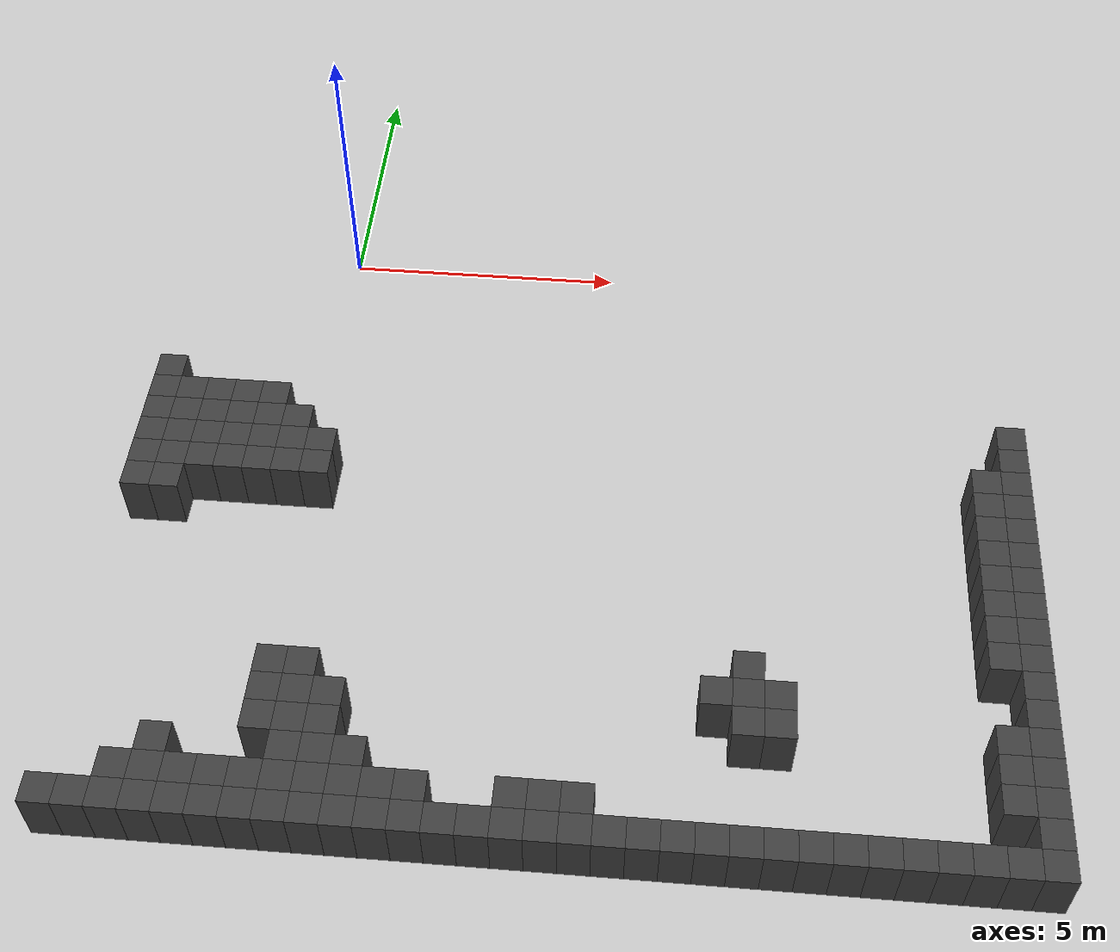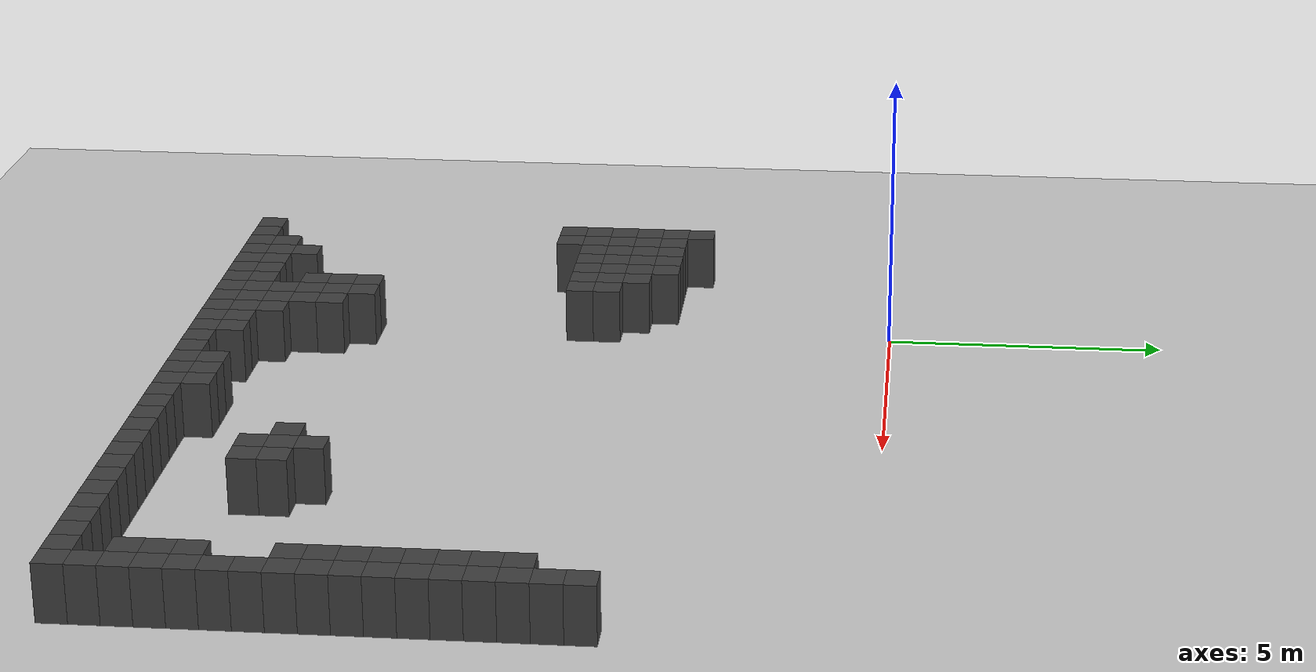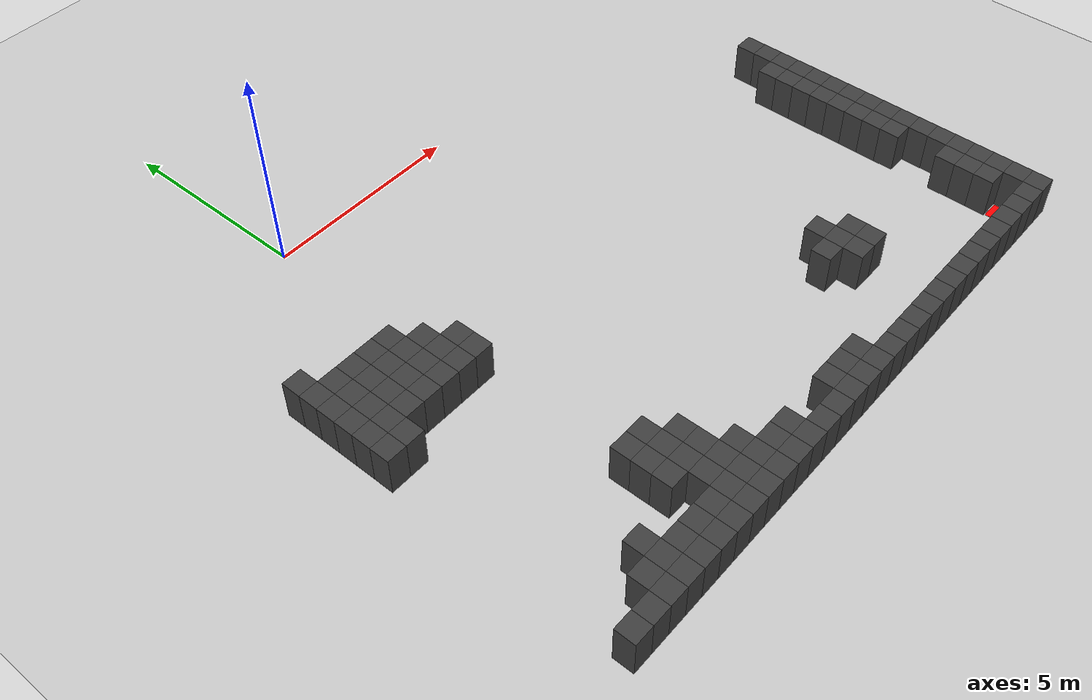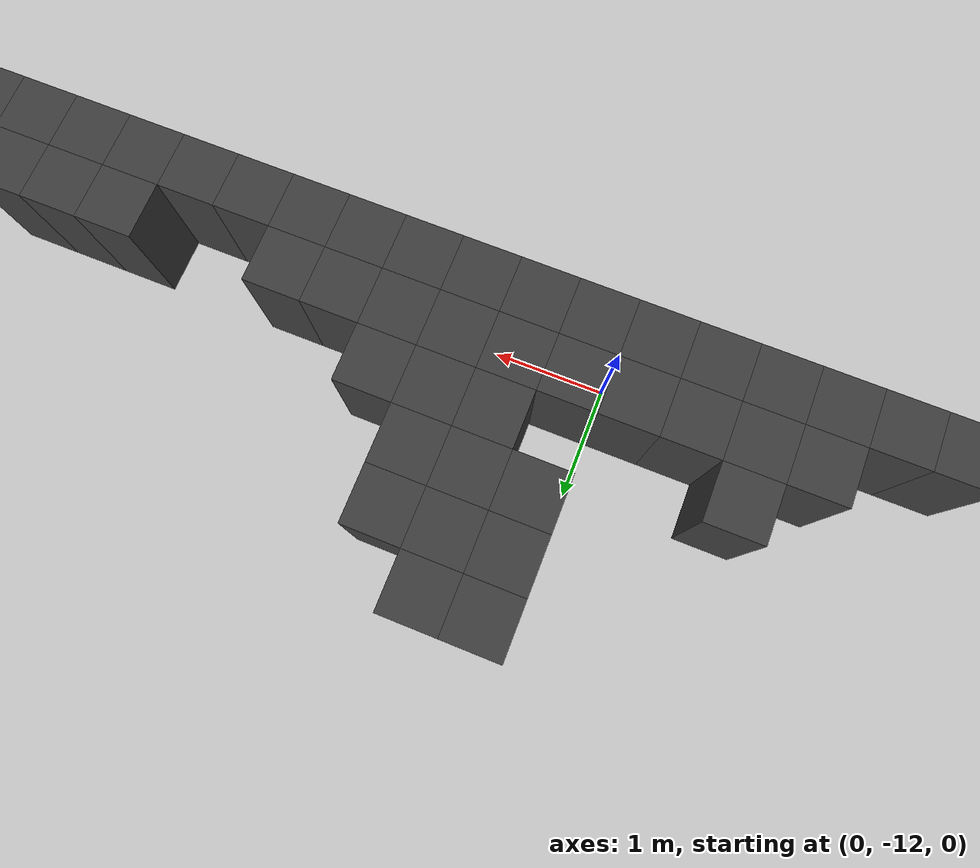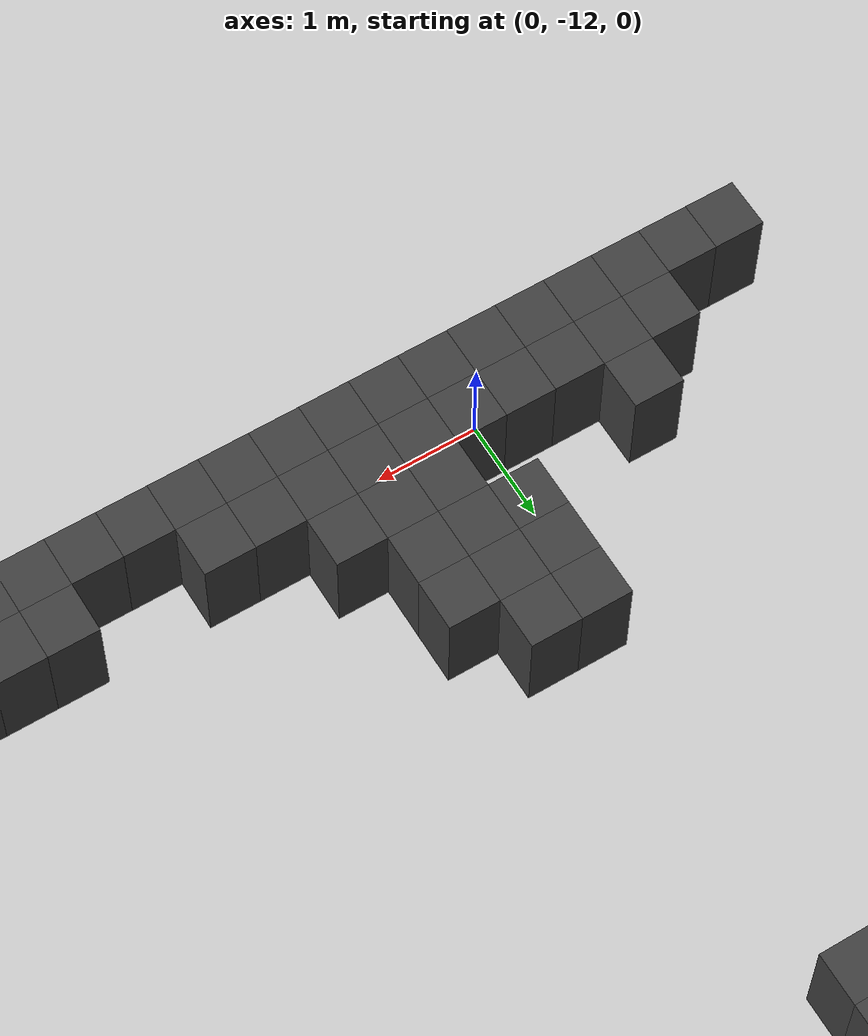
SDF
<sdf version="1.7">
 <world name="map_6610">
  <model name="ground_plane">
   <static>true</static>
   <link name="link">
    <collision name="collision">
     <geometry><plane><normal>0 0 1</normal><size>200 200</size></plane></geometry>
    </collision>
    <visual name="visual">
     <geometry><plane><normal>0 0 1</normal><size>200 200</size></plane></geometry>
     <material><ambient>0.8 0.8 0.8 1</ambient><diffuse>0.8 0.8 0.8 1</diffuse></material>
    </visual>
   </link>
  </model>
  <model name="maze_environment">
   <static>true</static>
   <link name="wall_361">
    <pose>-2.750 -3.750 0.500 0 0 0</pose>
    <collision name="col"><geometry><box><size>0.5 0.5 1.0</size></box></geometry></collision>
    <visual name="vis">
     <geometry><box><size>0.5 0.5 1.0</size></box></geometry>
     <material><ambient>0.15 0.15 0.15 1</ambient><diffuse>0.25 0.25 0.25 1</diffuse></material>
    </visual>
   </link>
   <link name="wall_375">
    <pose>-2.750 -4.250 0.500 0 0 0</pose>
    <collision name="col"><geometry><box><size>0.5 0.5 1.0</size></box></geometry></collision>
    <visual name="vis">
     <geometry><box><size>0.5 0.5 1.0</size></box></geometry>
     <material><ambient>0.15 0.15 0.15 1</ambient><diffuse>0.25 0.25 0.25 1</diffuse></material>
    </visual>
   </link>
   <link name="wall_376">
    <pose>-2.250 -4.250 0.500 0 0 0</pose>
    <collision name="col"><geometry><box><size>0.5 0.5 1.0</size></box></geometry></collision>
    <visual name="vis">
     <geometry><box><size>0.5 0.5 1.0</size></box></geometry>
     <material><ambient>0.15 0.15 0.15 1</ambient><diffuse>0.25 0.25 0.25 1</diffuse></material>
    </visual>
   </link>
   <link name="wall_377">
    <pose>-1.750 -4.250 0.500 0 0 0</pose>
    <collision name="col"><geometry><box><size>0.5 0.5 1.0</size></box></geometry></collision>
    <visual name="vis">
     <geometry><box><size>0.5 0.5 1.0</size></box></geometry>
     <material><ambient>0.15 0.15 0.15 1</ambient><diffuse>0.25 0.25 0.25 1</diffuse></material>
    </visual>
   </link>
   <link name="wall_378">
    <pose>-1.250 -4.250 0.500 0 0 0</pose>
    <collision name="col"><geometry><box><size>0.5 0.5 1.0</size></box></geometry></collision>
    <visual name="vis">
     <geometry><box><size>0.5 0.5 1.0</size></box></geometry>
     <material><ambient>0.15 0.15 0.15 1</ambient><diffuse>0.25 0.25 0.25 1</diffuse></material>
    </visual>
   </link>
   <link name="wall_379">
    <pose>-0.750 -4.250 0.500 0 0 0</pose>
    <collision name="col"><geometry><box><size>0.5 0.5 1.0</size></box></geometry></collision>
    <visual name="vis">
     <geometry><box><size>0.5 0.5 1.0</size></box></geometry>
     <material><ambient>0.15 0.15 0.15 1</ambient><diffuse>0.25 0.25 0.25 1</diffuse></material>
    </visual>
   </link>
   <link name="wall_380">
    <pose>12.250 -4.250 0.500 0 0 0</pose>
    <collision name="col"><geometry><box><size>0.5 0.5 1.0</size></box></geometry></collision>
    <visual name="vis">
     <geometry><box><size>0.5 0.5 1.0</size></box></geometry>
     <material><ambient>0.15 0.15 0.15 1</ambient><diffuse>0.25 0.25 0.25 1</diffuse></material>
    </visual>
   </link>
   <link name="wall_390">
    <pose>-2.750 -4.750 0.500 0 0 0</pose>
    <collision name="col"><geometry><box><size>0.5 0.5 1.0</size></box></geometry></collision>
    <visual name="vis">
     <geometry><box><size>0.5 0.5 1.0</size></box></geometry>
     <material><ambient>0.15 0.15 0.15 1</ambient><diffuse>0.25 0.25 0.25 1</diffuse></material>
    </visual>
   </link>
   <link name="wall_391">
    <pose>-2.250 -4.750 0.500 0 0 0</pose>
    <collision name="col"><geometry><box><size>0.5 0.5 1.0</size></box></geometry></collision>
    <visual name="vis">
     <geometry><box><size>0.5 0.5 1.0</size></box></geometry>
     <material><ambient>0.15 0.15 0.15 1</ambient><diffuse>0.25 0.25 0.25 1</diffuse></material>
    </visual>
   </link>
   <link name="wall_392">
    <pose>-1.750 -4.750 0.500 0 0 0</pose>
    <collision name="col"><geometry><box><size>0.5 0.5 1.0</size></box></geometry></collision>
    <visual name="vis">
     <geometry><box><size>0.5 0.5 1.0</size></box></geometry>
     <material><ambient>0.15 0.15 0.15 1</ambient><diffuse>0.25 0.25 0.25 1</diffuse></material>
    </visual>
   </link>
   <link name="wall_393">
    <pose>-1.250 -4.750 0.500 0 0 0</pose>
    <collision name="col"><geometry><box><size>0.5 0.5 1.0</size></box></geometry></collision>
    <visual name="vis">
     <geometry><box><size>0.5 0.5 1.0</size></box></geometry>
     <material><ambient>0.15 0.15 0.15 1</ambient><diffuse>0.25 0.25 0.25 1</diffuse></material>
    </visual>
   </link>
   <link name="wall_394">
    <pose>-0.750 -4.750 0.500 0 0 0</pose>
    <collision name="col"><geometry><box><size>0.5 0.5 1.0</size></box></geometry></collision>
    <visual name="vis">
     <geometry><box><size>0.5 0.5 1.0</size></box></geometry>
     <material><ambient>0.15 0.15 0.15 1</ambient><diffuse>0.25 0.25 0.25 1</diffuse></material>
    </visual>
   </link>
   <link name="wall_395">
    <pose>-0.250 -4.750 0.500 0 0 0</pose>
    <collision name="col"><geometry><box><size>0.5 0.5 1.0</size></box></geometry></collision>
    <visual name="vis">
     <geometry><box><size>0.5 0.5 1.0</size></box></geometry>
     <material><ambient>0.15 0.15 0.15 1</ambient><diffuse>0.25 0.25 0.25 1</diffuse></material>
    </visual>
   </link>
   <link name="wall_396">
    <pose>12.250 -4.750 0.500 0 0 0</pose>
    <collision name="col"><geometry><box><size>0.5 0.5 1.0</size></box></geometry></collision>
    <visual name="vis">
     <geometry><box><size>0.5 0.5 1.0</size></box></geometry>
     <material><ambient>0.15 0.15 0.15 1</ambient><diffuse>0.25 0.25 0.25 1</diffuse></material>
    </visual>
   </link>
   <link name="wall_409">
    <pose>-2.750 -5.250 0.500 0 0 0</pose>
    <collision name="col"><geometry><box><size>0.5 0.5 1.0</size></box></geometry></collision>
    <visual name="vis">
     <geometry><box><size>0.5 0.5 1.0</size></box></geometry>
     <material><ambient>0.15 0.15 0.15 1</ambient><diffuse>0.25 0.25 0.25 1</diffuse></material>
    </visual>
   </link>
   <link name="wall_410">
    <pose>-2.250 -5.250 0.500 0 0 0</pose>
    <collision name="col"><geometry><box><size>0.5 0.5 1.0</size></box></geometry></collision>
    <visual name="vis">
     <geometry><box><size>0.5 0.5 1.0</size></box></geometry>
     <material><ambient>0.15 0.15 0.15 1</ambient><diffuse>0.25 0.25 0.25 1</diffuse></material>
    </visual>
   </link>
   <link name="wall_411">
    <pose>-1.750 -5.250 0.500 0 0 0</pose>
    <collision name="col"><geometry><box><size>0.5 0.5 1.0</size></box></geometry></collision>
    <visual name="vis">
     <geometry><box><size>0.5 0.5 1.0</size></box></geometry>
     <material><ambient>0.15 0.15 0.15 1</ambient><diffuse>0.25 0.25 0.25 1</diffuse></material>
    </visual>
   </link>
   <link name="wall_412">
    <pose>-1.250 -5.250 0.500 0 0 0</pose>
    <collision name="col"><geometry><box><size>0.5 0.5 1.0</size></box></geometry></collision>
    <visual name="vis">
     <geometry><box><size>0.5 0.5 1.0</size></box></geometry>
     <material><ambient>0.15 0.15 0.15 1</ambient><diffuse>0.25 0.25 0.25 1</diffuse></material>
    </visual>
   </link>
   <link name="wall_413">
    <pose>-0.750 -5.250 0.500 0 0 0</pose>
    <collision name="col"><geometry><box><size>0.5 0.5 1.0</size></box></geometry></collision>
    <visual name="vis">
     <geometry><box><size>0.5 0.5 1.0</size></box></geometry>
     <material><ambient>0.15 0.15 0.15 1</ambient><diffuse>0.25 0.25 0.25 1</diffuse></material>
    </visual>
   </link>
   <link name="wall_414">
    <pose>-0.250 -5.250 0.500 0 0 0</pose>
    <collision name="col"><geometry><box><size>0.5 0.5 1.0</size></box></geometry></collision>
    <visual name="vis">
     <geometry><box><size>0.5 0.5 1.0</size></box></geometry>
     <material><ambient>0.15 0.15 0.15 1</ambient><diffuse>0.25 0.25 0.25 1</diffuse></material>
    </visual>
   </link>
   <link name="wall_415">
    <pose>0.250 -5.250 0.500 0 0 0</pose>
    <collision name="col"><geometry><box><size>0.5 0.5 1.0</size></box></geometry></collision>
    <visual name="vis">
     <geometry><box><size>0.5 0.5 1.0</size></box></geometry>
     <material><ambient>0.15 0.15 0.15 1</ambient><diffuse>0.25 0.25 0.25 1</diffuse></material>
    </visual>
   </link>
   <link name="wall_416">
    <pose>11.750 -5.250 0.500 0 0 0</pose>
    <collision name="col"><geometry><box><size>0.5 0.5 1.0</size></box></geometry></collision>
    <visual name="vis">
     <geometry><box><size>0.5 0.5 1.0</size></box></geometry>
     <material><ambient>0.15 0.15 0.15 1</ambient><diffuse>0.25 0.25 0.25 1</diffuse></material>
    </visual>
   </link>
   <link name="wall_417">
    <pose>12.250 -5.250 0.500 0 0 0</pose>
    <collision name="col"><geometry><box><size>0.5 0.5 1.0</size></box></geometry></collision>
    <visual name="vis">
     <geometry><box><size>0.5 0.5 1.0</size></box></geometry>
     <material><ambient>0.15 0.15 0.15 1</ambient><diffuse>0.25 0.25 0.25 1</diffuse></material>
    </visual>
   </link>
   <link name="wall_429">
    <pose>-2.750 -5.750 0.500 0 0 0</pose>
    <collision name="col"><geometry><box><size>0.5 0.5 1.0</size></box></geometry></collision>
    <visual name="vis">
     <geometry><box><size>0.5 0.5 1.0</size></box></geometry>
     <material><ambient>0.15 0.15 0.15 1</ambient><diffuse>0.25 0.25 0.25 1</diffuse></material>
    </visual>
   </link>
   <link name="wall_430">
    <pose>-2.250 -5.750 0.500 0 0 0</pose>
    <collision name="col"><geometry><box><size>0.5 0.5 1.0</size></box></geometry></collision>
    <visual name="vis">
     <geometry><box><size>0.5 0.5 1.0</size></box></geometry>
     <material><ambient>0.15 0.15 0.15 1</ambient><diffuse>0.25 0.25 0.25 1</diffuse></material>
    </visual>
   </link>
   <link name="wall_431">
    <pose>-1.750 -5.750 0.500 0 0 0</pose>
    <collision name="col"><geometry><box><size>0.5 0.5 1.0</size></box></geometry></collision>
    <visual name="vis">
     <geometry><box><size>0.5 0.5 1.0</size></box></geometry>
     <material><ambient>0.15 0.15 0.15 1</ambient><diffuse>0.25 0.25 0.25 1</diffuse></material>
    </visual>
   </link>
   <link name="wall_432">
    <pose>-1.250 -5.750 0.500 0 0 0</pose>
    <collision name="col"><geometry><box><size>0.5 0.5 1.0</size></box></geometry></collision>
    <visual name="vis">
     <geometry><box><size>0.5 0.5 1.0</size></box></geometry>
     <material><ambient>0.15 0.15 0.15 1</ambient><diffuse>0.25 0.25 0.25 1</diffuse></material>
    </visual>
   </link>
   <link name="wall_433">
    <pose>-0.750 -5.750 0.500 0 0 0</pose>
    <collision name="col"><geometry><box><size>0.5 0.5 1.0</size></box></geometry></collision>
    <visual name="vis">
     <geometry><box><size>0.5 0.5 1.0</size></box></geometry>
     <material><ambient>0.15 0.15 0.15 1</ambient><diffuse>0.25 0.25 0.25 1</diffuse></material>
    </visual>
   </link>
   <link name="wall_434">
    <pose>-0.250 -5.750 0.500 0 0 0</pose>
    <collision name="col"><geometry><box><size>0.5 0.5 1.0</size></box></geometry></collision>
    <visual name="vis">
     <geometry><box><size>0.5 0.5 1.0</size></box></geometry>
     <material><ambient>0.15 0.15 0.15 1</ambient><diffuse>0.25 0.25 0.25 1</diffuse></material>
    </visual>
   </link>
   <link name="wall_435">
    <pose>0.250 -5.750 0.500 0 0 0</pose>
    <collision name="col"><geometry><box><size>0.5 0.5 1.0</size></box></geometry></collision>
    <visual name="vis">
     <geometry><box><size>0.5 0.5 1.0</size></box></geometry>
     <material><ambient>0.15 0.15 0.15 1</ambient><diffuse>0.25 0.25 0.25 1</diffuse></material>
    </visual>
   </link>
   <link name="wall_436">
    <pose>11.750 -5.750 0.500 0 0 0</pose>
    <collision name="col"><geometry><box><size>0.5 0.5 1.0</size></box></geometry></collision>
    <visual name="vis">
     <geometry><box><size>0.5 0.5 1.0</size></box></geometry>
     <material><ambient>0.15 0.15 0.15 1</ambient><diffuse>0.25 0.25 0.25 1</diffuse></material>
    </visual>
   </link>
   <link name="wall_437">
    <pose>12.250 -5.750 0.500 0 0 0</pose>
    <collision name="col"><geometry><box><size>0.5 0.5 1.0</size></box></geometry></collision>
    <visual name="vis">
     <geometry><box><size>0.5 0.5 1.0</size></box></geometry>
     <material><ambient>0.15 0.15 0.15 1</ambient><diffuse>0.25 0.25 0.25 1</diffuse></material>
    </visual>
   </link>
   <link name="wall_448">
    <pose>-2.750 -6.250 0.500 0 0 0</pose>
    <collision name="col"><geometry><box><size>0.5 0.5 1.0</size></box></geometry></collision>
    <visual name="vis">
     <geometry><box><size>0.5 0.5 1.0</size></box></geometry>
     <material><ambient>0.15 0.15 0.15 1</ambient><diffuse>0.25 0.25 0.25 1</diffuse></material>
    </visual>
   </link>
   <link name="wall_449">
    <pose>-2.250 -6.250 0.500 0 0 0</pose>
    <collision name="col"><geometry><box><size>0.5 0.5 1.0</size></box></geometry></collision>
    <visual name="vis">
     <geometry><box><size>0.5 0.5 1.0</size></box></geometry>
     <material><ambient>0.15 0.15 0.15 1</ambient><diffuse>0.25 0.25 0.25 1</diffuse></material>
    </visual>
   </link>
   <link name="wall_450">
    <pose>11.750 -6.250 0.500 0 0 0</pose>
    <collision name="col"><geometry><box><size>0.5 0.5 1.0</size></box></geometry></collision>
    <visual name="vis">
     <geometry><box><size>0.5 0.5 1.0</size></box></geometry>
     <material><ambient>0.15 0.15 0.15 1</ambient><diffuse>0.25 0.25 0.25 1</diffuse></material>
    </visual>
   </link>
   <link name="wall_451">
    <pose>12.250 -6.250 0.500 0 0 0</pose>
    <collision name="col"><geometry><box><size>0.5 0.5 1.0</size></box></geometry></collision>
    <visual name="vis">
     <geometry><box><size>0.5 0.5 1.0</size></box></geometry>
     <material><ambient>0.15 0.15 0.15 1</ambient><diffuse>0.25 0.25 0.25 1</diffuse></material>
    </visual>
   </link>
   <link name="wall_454">
    <pose>11.750 -6.750 0.500 0 0 0</pose>
    <collision name="col"><geometry><box><size>0.5 0.5 1.0</size></box></geometry></collision>
    <visual name="vis">
     <geometry><box><size>0.5 0.5 1.0</size></box></geometry>
     <material><ambient>0.15 0.15 0.15 1</ambient><diffuse>0.25 0.25 0.25 1</diffuse></material>
    </visual>
   </link>
   <link name="wall_455">
    <pose>12.250 -6.750 0.500 0 0 0</pose>
    <collision name="col"><geometry><box><size>0.5 0.5 1.0</size></box></geometry></collision>
    <visual name="vis">
     <geometry><box><size>0.5 0.5 1.0</size></box></geometry>
     <material><ambient>0.15 0.15 0.15 1</ambient><diffuse>0.25 0.25 0.25 1</diffuse></material>
    </visual>
   </link>
   <link name="wall_457">
    <pose>11.750 -7.250 0.500 0 0 0</pose>
    <collision name="col"><geometry><box><size>0.5 0.5 1.0</size></box></geometry></collision>
    <visual name="vis">
     <geometry><box><size>0.5 0.5 1.0</size></box></geometry>
     <material><ambient>0.15 0.15 0.15 1</ambient><diffuse>0.25 0.25 0.25 1</diffuse></material>
    </visual>
   </link>
   <link name="wall_458">
    <pose>12.250 -7.250 0.500 0 0 0</pose>
    <collision name="col"><geometry><box><size>0.5 0.5 1.0</size></box></geometry></collision>
    <visual name="vis">
     <geometry><box><size>0.5 0.5 1.0</size></box></geometry>
     <material><ambient>0.15 0.15 0.15 1</ambient><diffuse>0.25 0.25 0.25 1</diffuse></material>
    </visual>
   </link>
   <link name="wall_460">
    <pose>11.750 -7.750 0.500 0 0 0</pose>
    <collision name="col"><geometry><box><size>0.5 0.5 1.0</size></box></geometry></collision>
    <visual name="vis">
     <geometry><box><size>0.5 0.5 1.0</size></box></geometry>
     <material><ambient>0.15 0.15 0.15 1</ambient><diffuse>0.25 0.25 0.25 1</diffuse></material>
    </visual>
   </link>
   <link name="wall_461">
    <pose>12.250 -7.750 0.500 0 0 0</pose>
    <collision name="col"><geometry><box><size>0.5 0.5 1.0</size></box></geometry></collision>
    <visual name="vis">
     <geometry><box><size>0.5 0.5 1.0</size></box></geometry>
     <material><ambient>0.15 0.15 0.15 1</ambient><diffuse>0.25 0.25 0.25 1</diffuse></material>
    </visual>
   </link>
   <link name="wall_463">
    <pose>11.750 -8.250 0.500 0 0 0</pose>
    <collision name="col"><geometry><box><size>0.5 0.5 1.0</size></box></geometry></collision>
    <visual name="vis">
     <geometry><box><size>0.5 0.5 1.0</size></box></geometry>
     <material><ambient>0.15 0.15 0.15 1</ambient><diffuse>0.25 0.25 0.25 1</diffuse></material>
    </visual>
   </link>
   <link name="wall_464">
    <pose>12.250 -8.250 0.500 0 0 0</pose>
    <collision name="col"><geometry><box><size>0.5 0.5 1.0</size></box></geometry></collision>
    <visual name="vis">
     <geometry><box><size>0.5 0.5 1.0</size></box></geometry>
     <material><ambient>0.15 0.15 0.15 1</ambient><diffuse>0.25 0.25 0.25 1</diffuse></material>
    </visual>
   </link>
   <link name="wall_466">
    <pose>11.750 -8.750 0.500 0 0 0</pose>
    <collision name="col"><geometry><box><size>0.5 0.5 1.0</size></box></geometry></collision>
    <visual name="vis">
     <geometry><box><size>0.5 0.5 1.0</size></box></geometry>
     <material><ambient>0.15 0.15 0.15 1</ambient><diffuse>0.25 0.25 0.25 1</diffuse></material>
    </visual>
   </link>
   <link name="wall_467">
    <pose>12.250 -8.750 0.500 0 0 0</pose>
    <collision name="col"><geometry><box><size>0.5 0.5 1.0</size></box></geometry></collision>
    <visual name="vis">
     <geometry><box><size>0.5 0.5 1.0</size></box></geometry>
     <material><ambient>0.15 0.15 0.15 1</ambient><diffuse>0.25 0.25 0.25 1</diffuse></material>
    </visual>
   </link>
   <link name="wall_469">
    <pose>7.750 -9.250 0.500 0 0 0</pose>
    <collision name="col"><geometry><box><size>0.5 0.5 1.0</size></box></geometry></collision>
    <visual name="vis">
     <geometry><box><size>0.5 0.5 1.0</size></box></geometry>
     <material><ambient>0.15 0.15 0.15 1</ambient><diffuse>0.25 0.25 0.25 1</diffuse></material>
    </visual>
   </link>
   <link name="wall_470">
    <pose>12.250 -9.250 0.500 0 0 0</pose>
    <collision name="col"><geometry><box><size>0.5 0.5 1.0</size></box></geometry></collision>
    <visual name="vis">
     <geometry><box><size>0.5 0.5 1.0</size></box></geometry>
     <material><ambient>0.15 0.15 0.15 1</ambient><diffuse>0.25 0.25 0.25 1</diffuse></material>
    </visual>
   </link>
   <link name="wall_472">
    <pose>0.250 -9.750 0.500 0 0 0</pose>
    <collision name="col"><geometry><box><size>0.5 0.5 1.0</size></box></geometry></collision>
    <visual name="vis">
     <geometry><box><size>0.5 0.5 1.0</size></box></geometry>
     <material><ambient>0.15 0.15 0.15 1</ambient><diffuse>0.25 0.25 0.25 1</diffuse></material>
    </visual>
   </link>
   <link name="wall_473">
    <pose>0.750 -9.750 0.500 0 0 0</pose>
    <collision name="col"><geometry><box><size>0.5 0.5 1.0</size></box></geometry></collision>
    <visual name="vis">
     <geometry><box><size>0.5 0.5 1.0</size></box></geometry>
     <material><ambient>0.15 0.15 0.15 1</ambient><diffuse>0.25 0.25 0.25 1</diffuse></material>
    </visual>
   </link>
   <link name="wall_474">
    <pose>7.250 -9.750 0.500 0 0 0</pose>
    <collision name="col"><geometry><box><size>0.5 0.5 1.0</size></box></geometry></collision>
    <visual name="vis">
     <geometry><box><size>0.5 0.5 1.0</size></box></geometry>
     <material><ambient>0.15 0.15 0.15 1</ambient><diffuse>0.25 0.25 0.25 1</diffuse></material>
    </visual>
   </link>
   <link name="wall_475">
    <pose>7.750 -9.750 0.500 0 0 0</pose>
    <collision name="col"><geometry><box><size>0.5 0.5 1.0</size></box></geometry></collision>
    <visual name="vis">
     <geometry><box><size>0.5 0.5 1.0</size></box></geometry>
     <material><ambient>0.15 0.15 0.15 1</ambient><diffuse>0.25 0.25 0.25 1</diffuse></material>
    </visual>
   </link>
   <link name="wall_476">
    <pose>8.250 -9.750 0.500 0 0 0</pose>
    <collision name="col"><geometry><box><size>0.5 0.5 1.0</size></box></geometry></collision>
    <visual name="vis">
     <geometry><box><size>0.5 0.5 1.0</size></box></geometry>
     <material><ambient>0.15 0.15 0.15 1</ambient><diffuse>0.25 0.25 0.25 1</diffuse></material>
    </visual>
   </link>
   <link name="wall_477">
    <pose>12.250 -9.750 0.500 0 0 0</pose>
    <collision name="col"><geometry><box><size>0.5 0.5 1.0</size></box></geometry></collision>
    <visual name="vis">
     <geometry><box><size>0.5 0.5 1.0</size></box></geometry>
     <material><ambient>0.15 0.15 0.15 1</ambient><diffuse>0.25 0.25 0.25 1</diffuse></material>
    </visual>
   </link>
   <link name="wall_482">
    <pose>0.250 -10.250 0.500 0 0 0</pose>
    <collision name="col"><geometry><box><size>0.5 0.5 1.0</size></box></geometry></collision>
    <visual name="vis">
     <geometry><box><size>0.5 0.5 1.0</size></box></geometry>
     <material><ambient>0.15 0.15 0.15 1</ambient><diffuse>0.25 0.25 0.25 1</diffuse></material>
    </visual>
   </link>
   <link name="wall_483">
    <pose>0.750 -10.250 0.500 0 0 0</pose>
    <collision name="col"><geometry><box><size>0.5 0.5 1.0</size></box></geometry></collision>
    <visual name="vis">
     <geometry><box><size>0.5 0.5 1.0</size></box></geometry>
     <material><ambient>0.15 0.15 0.15 1</ambient><diffuse>0.25 0.25 0.25 1</diffuse></material>
    </visual>
   </link>
   <link name="wall_484">
    <pose>1.250 -10.250 0.500 0 0 0</pose>
    <collision name="col"><geometry><box><size>0.5 0.5 1.0</size></box></geometry></collision>
    <visual name="vis">
     <geometry><box><size>0.5 0.5 1.0</size></box></geometry>
     <material><ambient>0.15 0.15 0.15 1</ambient><diffuse>0.25 0.25 0.25 1</diffuse></material>
    </visual>
   </link>
   <link name="wall_485">
    <pose>7.750 -10.250 0.500 0 0 0</pose>
    <collision name="col"><geometry><box><size>0.5 0.5 1.0</size></box></geometry></collision>
    <visual name="vis">
     <geometry><box><size>0.5 0.5 1.0</size></box></geometry>
     <material><ambient>0.15 0.15 0.15 1</ambient><diffuse>0.25 0.25 0.25 1</diffuse></material>
    </visual>
   </link>
   <link name="wall_486">
    <pose>8.250 -10.250 0.500 0 0 0</pose>
    <collision name="col"><geometry><box><size>0.5 0.5 1.0</size></box></geometry></collision>
    <visual name="vis">
     <geometry><box><size>0.5 0.5 1.0</size></box></geometry>
     <material><ambient>0.15 0.15 0.15 1</ambient><diffuse>0.25 0.25 0.25 1</diffuse></material>
    </visual>
   </link>
   <link name="wall_487">
    <pose>11.750 -10.250 0.500 0 0 0</pose>
    <collision name="col"><geometry><box><size>0.5 0.5 1.0</size></box></geometry></collision>
    <visual name="vis">
     <geometry><box><size>0.5 0.5 1.0</size></box></geometry>
     <material><ambient>0.15 0.15 0.15 1</ambient><diffuse>0.25 0.25 0.25 1</diffuse></material>
    </visual>
   </link>
   <link name="wall_488">
    <pose>12.250 -10.250 0.500 0 0 0</pose>
    <collision name="col"><geometry><box><size>0.5 0.5 1.0</size></box></geometry></collision>
    <visual name="vis">
     <geometry><box><size>0.5 0.5 1.0</size></box></geometry>
     <material><ambient>0.15 0.15 0.15 1</ambient><diffuse>0.25 0.25 0.25 1</diffuse></material>
    </visual>
   </link>
   <link name="wall_495">
    <pose>0.250 -10.750 0.500 0 0 0</pose>
    <collision name="col"><geometry><box><size>0.5 0.5 1.0</size></box></geometry></collision>
    <visual name="vis">
     <geometry><box><size>0.5 0.5 1.0</size></box></geometry>
     <material><ambient>0.15 0.15 0.15 1</ambient><diffuse>0.25 0.25 0.25 1</diffuse></material>
    </visual>
   </link>
   <link name="wall_496">
    <pose>0.750 -10.750 0.500 0 0 0</pose>
    <collision name="col"><geometry><box><size>0.5 0.5 1.0</size></box></geometry></collision>
    <visual name="vis">
     <geometry><box><size>0.5 0.5 1.0</size></box></geometry>
     <material><ambient>0.15 0.15 0.15 1</ambient><diffuse>0.25 0.25 0.25 1</diffuse></material>
    </visual>
   </link>
   <link name="wall_497">
    <pose>1.250 -10.750 0.500 0 0 0</pose>
    <collision name="col"><geometry><box><size>0.5 0.5 1.0</size></box></geometry></collision>
    <visual name="vis">
     <geometry><box><size>0.5 0.5 1.0</size></box></geometry>
     <material><ambient>0.15 0.15 0.15 1</ambient><diffuse>0.25 0.25 0.25 1</diffuse></material>
    </visual>
   </link>
   <link name="wall_498">
    <pose>11.750 -10.750 0.500 0 0 0</pose>
    <collision name="col"><geometry><box><size>0.5 0.5 1.0</size></box></geometry></collision>
    <visual name="vis">
     <geometry><box><size>0.5 0.5 1.0</size></box></geometry>
     <material><ambient>0.15 0.15 0.15 1</ambient><diffuse>0.25 0.25 0.25 1</diffuse></material>
    </visual>
   </link>
   <link name="wall_499">
    <pose>12.250 -10.750 0.500 0 0 0</pose>
    <collision name="col"><geometry><box><size>0.5 0.5 1.0</size></box></geometry></collision>
    <visual name="vis">
     <geometry><box><size>0.5 0.5 1.0</size></box></geometry>
     <material><ambient>0.15 0.15 0.15 1</ambient><diffuse>0.25 0.25 0.25 1</diffuse></material>
    </visual>
   </link>
   <link name="wall_508">
    <pose>-1.250 -11.250 0.500 0 0 0</pose>
    <collision name="col"><geometry><box><size>0.5 0.5 1.0</size></box></geometry></collision>
    <visual name="vis">
     <geometry><box><size>0.5 0.5 1.0</size></box></geometry>
     <material><ambient>0.15 0.15 0.15 1</ambient><diffuse>0.25 0.25 0.25 1</diffuse></material>
    </visual>
   </link>
   <link name="wall_509">
    <pose>0.750 -11.250 0.500 0 0 0</pose>
    <collision name="col"><geometry><box><size>0.5 0.5 1.0</size></box></geometry></collision>
    <visual name="vis">
     <geometry><box><size>0.5 0.5 1.0</size></box></geometry>
     <material><ambient>0.15 0.15 0.15 1</ambient><diffuse>0.25 0.25 0.25 1</diffuse></material>
    </visual>
   </link>
   <link name="wall_510">
    <pose>1.250 -11.250 0.500 0 0 0</pose>
    <collision name="col"><geometry><box><size>0.5 0.5 1.0</size></box></geometry></collision>
    <visual name="vis">
     <geometry><box><size>0.5 0.5 1.0</size></box></geometry>
     <material><ambient>0.15 0.15 0.15 1</ambient><diffuse>0.25 0.25 0.25 1</diffuse></material>
    </visual>
   </link>
   <link name="wall_511">
    <pose>1.750 -11.250 0.500 0 0 0</pose>
    <collision name="col"><geometry><box><size>0.5 0.5 1.0</size></box></geometry></collision>
    <visual name="vis">
     <geometry><box><size>0.5 0.5 1.0</size></box></geometry>
     <material><ambient>0.15 0.15 0.15 1</ambient><diffuse>0.25 0.25 0.25 1</diffuse></material>
    </visual>
   </link>
   <link name="wall_512">
    <pose>11.750 -11.250 0.500 0 0 0</pose>
    <collision name="col"><geometry><box><size>0.5 0.5 1.0</size></box></geometry></collision>
    <visual name="vis">
     <geometry><box><size>0.5 0.5 1.0</size></box></geometry>
     <material><ambient>0.15 0.15 0.15 1</ambient><diffuse>0.25 0.25 0.25 1</diffuse></material>
    </visual>
   </link>
   <link name="wall_513">
    <pose>12.250 -11.250 0.500 0 0 0</pose>
    <collision name="col"><geometry><box><size>0.5 0.5 1.0</size></box></geometry></collision>
    <visual name="vis">
     <geometry><box><size>0.5 0.5 1.0</size></box></geometry>
     <material><ambient>0.15 0.15 0.15 1</ambient><diffuse>0.25 0.25 0.25 1</diffuse></material>
    </visual>
   </link>
   <link name="wall_525">
    <pose>-1.750 -11.750 0.500 0 0 0</pose>
    <collision name="col"><geometry><box><size>0.5 0.5 1.0</size></box></geometry></collision>
    <visual name="vis">
     <geometry><box><size>0.5 0.5 1.0</size></box></geometry>
     <material><ambient>0.15 0.15 0.15 1</ambient><diffuse>0.25 0.25 0.25 1</diffuse></material>
    </visual>
   </link>
   <link name="wall_526">
    <pose>-1.250 -11.750 0.500 0 0 0</pose>
    <collision name="col"><geometry><box><size>0.5 0.5 1.0</size></box></geometry></collision>
    <visual name="vis">
     <geometry><box><size>0.5 0.5 1.0</size></box></geometry>
     <material><ambient>0.15 0.15 0.15 1</ambient><diffuse>0.25 0.25 0.25 1</diffuse></material>
    </visual>
   </link>
   <link name="wall_527">
    <pose>-0.750 -11.750 0.500 0 0 0</pose>
    <collision name="col"><geometry><box><size>0.5 0.5 1.0</size></box></geometry></collision>
    <visual name="vis">
     <geometry><box><size>0.5 0.5 1.0</size></box></geometry>
     <material><ambient>0.15 0.15 0.15 1</ambient><diffuse>0.25 0.25 0.25 1</diffuse></material>
    </visual>
   </link>
   <link name="wall_528">
    <pose>-0.250 -11.750 0.500 0 0 0</pose>
    <collision name="col"><geometry><box><size>0.5 0.5 1.0</size></box></geometry></collision>
    <visual name="vis">
     <geometry><box><size>0.5 0.5 1.0</size></box></geometry>
     <material><ambient>0.15 0.15 0.15 1</ambient><diffuse>0.25 0.25 0.25 1</diffuse></material>
    </visual>
   </link>
   <link name="wall_529">
    <pose>0.250 -11.750 0.500 0 0 0</pose>
    <collision name="col"><geometry><box><size>0.5 0.5 1.0</size></box></geometry></collision>
    <visual name="vis">
     <geometry><box><size>0.5 0.5 1.0</size></box></geometry>
     <material><ambient>0.15 0.15 0.15 1</ambient><diffuse>0.25 0.25 0.25 1</diffuse></material>
    </visual>
   </link>
   <link name="wall_530">
    <pose>0.750 -11.750 0.500 0 0 0</pose>
    <collision name="col"><geometry><box><size>0.5 0.5 1.0</size></box></geometry></collision>
    <visual name="vis">
     <geometry><box><size>0.5 0.5 1.0</size></box></geometry>
     <material><ambient>0.15 0.15 0.15 1</ambient><diffuse>0.25 0.25 0.25 1</diffuse></material>
    </visual>
   </link>
   <link name="wall_531">
    <pose>1.250 -11.750 0.500 0 0 0</pose>
    <collision name="col"><geometry><box><size>0.5 0.5 1.0</size></box></geometry></collision>
    <visual name="vis">
     <geometry><box><size>0.5 0.5 1.0</size></box></geometry>
     <material><ambient>0.15 0.15 0.15 1</ambient><diffuse>0.25 0.25 0.25 1</diffuse></material>
    </visual>
   </link>
   <link name="wall_532">
    <pose>1.750 -11.750 0.500 0 0 0</pose>
    <collision name="col"><geometry><box><size>0.5 0.5 1.0</size></box></geometry></collision>
    <visual name="vis">
     <geometry><box><size>0.5 0.5 1.0</size></box></geometry>
     <material><ambient>0.15 0.15 0.15 1</ambient><diffuse>0.25 0.25 0.25 1</diffuse></material>
    </visual>
   </link>
   <link name="wall_533">
    <pose>2.250 -11.750 0.500 0 0 0</pose>
    <collision name="col"><geometry><box><size>0.5 0.5 1.0</size></box></geometry></collision>
    <visual name="vis">
     <geometry><box><size>0.5 0.5 1.0</size></box></geometry>
     <material><ambient>0.15 0.15 0.15 1</ambient><diffuse>0.25 0.25 0.25 1</diffuse></material>
    </visual>
   </link>
   <link name="wall_534">
    <pose>2.750 -11.750 0.500 0 0 0</pose>
    <collision name="col"><geometry><box><size>0.5 0.5 1.0</size></box></geometry></collision>
    <visual name="vis">
     <geometry><box><size>0.5 0.5 1.0</size></box></geometry>
     <material><ambient>0.15 0.15 0.15 1</ambient><diffuse>0.25 0.25 0.25 1</diffuse></material>
    </visual>
   </link>
   <link name="wall_535">
    <pose>4.250 -11.750 0.500 0 0 0</pose>
    <collision name="col"><geometry><box><size>0.5 0.5 1.0</size></box></geometry></collision>
    <visual name="vis">
     <geometry><box><size>0.5 0.5 1.0</size></box></geometry>
     <material><ambient>0.15 0.15 0.15 1</ambient><diffuse>0.25 0.25 0.25 1</diffuse></material>
    </visual>
   </link>
   <link name="wall_536">
    <pose>4.750 -11.750 0.500 0 0 0</pose>
    <collision name="col"><geometry><box><size>0.5 0.5 1.0</size></box></geometry></collision>
    <visual name="vis">
     <geometry><box><size>0.5 0.5 1.0</size></box></geometry>
     <material><ambient>0.15 0.15 0.15 1</ambient><diffuse>0.25 0.25 0.25 1</diffuse></material>
    </visual>
   </link>
   <link name="wall_537">
    <pose>5.250 -11.750 0.500 0 0 0</pose>
    <collision name="col"><geometry><box><size>0.5 0.5 1.0</size></box></geometry></collision>
    <visual name="vis">
     <geometry><box><size>0.5 0.5 1.0</size></box></geometry>
     <material><ambient>0.15 0.15 0.15 1</ambient><diffuse>0.25 0.25 0.25 1</diffuse></material>
    </visual>
   </link>
   <link name="wall_538">
    <pose>12.250 -11.750 0.500 0 0 0</pose>
    <collision name="col"><geometry><box><size>0.5 0.5 1.0</size></box></geometry></collision>
    <visual name="vis">
     <geometry><box><size>0.5 0.5 1.0</size></box></geometry>
     <material><ambient>0.15 0.15 0.15 1</ambient><diffuse>0.25 0.25 0.25 1</diffuse></material>
    </visual>
   </link>
   <link name="wall_558">
    <pose>-2.750 -12.250 0.500 0 0 0</pose>
    <collision name="col"><geometry><box><size>0.5 0.5 1.0</size></box></geometry></collision>
    <visual name="vis">
     <geometry><box><size>0.5 0.5 1.0</size></box></geometry>
     <material><ambient>0.15 0.15 0.15 1</ambient><diffuse>0.25 0.25 0.25 1</diffuse></material>
    </visual>
   </link>
   <link name="wall_559">
    <pose>-2.250 -12.250 0.500 0 0 0</pose>
    <collision name="col"><geometry><box><size>0.5 0.5 1.0</size></box></geometry></collision>
    <visual name="vis">
     <geometry><box><size>0.5 0.5 1.0</size></box></geometry>
     <material><ambient>0.15 0.15 0.15 1</ambient><diffuse>0.25 0.25 0.25 1</diffuse></material>
    </visual>
   </link>
   <link name="wall_560">
    <pose>-1.750 -12.250 0.500 0 0 0</pose>
    <collision name="col"><geometry><box><size>0.5 0.5 1.0</size></box></geometry></collision>
    <visual name="vis">
     <geometry><box><size>0.5 0.5 1.0</size></box></geometry>
     <material><ambient>0.15 0.15 0.15 1</ambient><diffuse>0.25 0.25 0.25 1</diffuse></material>
    </visual>
   </link>
   <link name="wall_561">
    <pose>-1.250 -12.250 0.500 0 0 0</pose>
    <collision name="col"><geometry><box><size>0.5 0.5 1.0</size></box></geometry></collision>
    <visual name="vis">
     <geometry><box><size>0.5 0.5 1.0</size></box></geometry>
     <material><ambient>0.15 0.15 0.15 1</ambient><diffuse>0.25 0.25 0.25 1</diffuse></material>
    </visual>
   </link>
   <link name="wall_562">
    <pose>-0.750 -12.250 0.500 0 0 0</pose>
    <collision name="col"><geometry><box><size>0.5 0.5 1.0</size></box></geometry></collision>
    <visual name="vis">
     <geometry><box><size>0.5 0.5 1.0</size></box></geometry>
     <material><ambient>0.15 0.15 0.15 1</ambient><diffuse>0.25 0.25 0.25 1</diffuse></material>
    </visual>
   </link>
   <link name="wall_563">
    <pose>-0.250 -12.250 0.500 0 0 0</pose>
    <collision name="col"><geometry><box><size>0.5 0.5 1.0</size></box></geometry></collision>
    <visual name="vis">
     <geometry><box><size>0.5 0.5 1.0</size></box></geometry>
     <material><ambient>0.15 0.15 0.15 1</ambient><diffuse>0.25 0.25 0.25 1</diffuse></material>
    </visual>
   </link>
   <link name="wall_564">
    <pose>0.250 -12.250 0.500 0 0 0</pose>
    <collision name="col"><geometry><box><size>0.5 0.5 1.0</size></box></geometry></collision>
    <visual name="vis">
     <geometry><box><size>0.5 0.5 1.0</size></box></geometry>
     <material><ambient>0.15 0.15 0.15 1</ambient><diffuse>0.25 0.25 0.25 1</diffuse></material>
    </visual>
   </link>
   <link name="wall_565">
    <pose>0.750 -12.250 0.500 0 0 0</pose>
    <collision name="col"><geometry><box><size>0.5 0.5 1.0</size></box></geometry></collision>
    <visual name="vis">
     <geometry><box><size>0.5 0.5 1.0</size></box></geometry>
     <material><ambient>0.15 0.15 0.15 1</ambient><diffuse>0.25 0.25 0.25 1</diffuse></material>
    </visual>
   </link>
   <link name="wall_566">
    <pose>1.250 -12.250 0.500 0 0 0</pose>
    <collision name="col"><geometry><box><size>0.5 0.5 1.0</size></box></geometry></collision>
    <visual name="vis">
     <geometry><box><size>0.5 0.5 1.0</size></box></geometry>
     <material><ambient>0.15 0.15 0.15 1</ambient><diffuse>0.25 0.25 0.25 1</diffuse></material>
    </visual>
   </link>
   <link name="wall_567">
    <pose>1.750 -12.250 0.500 0 0 0</pose>
    <collision name="col"><geometry><box><size>0.5 0.5 1.0</size></box></geometry></collision>
    <visual name="vis">
     <geometry><box><size>0.5 0.5 1.0</size></box></geometry>
     <material><ambient>0.15 0.15 0.15 1</ambient><diffuse>0.25 0.25 0.25 1</diffuse></material>
    </visual>
   </link>
   <link name="wall_568">
    <pose>2.250 -12.250 0.500 0 0 0</pose>
    <collision name="col"><geometry><box><size>0.5 0.5 1.0</size></box></geometry></collision>
    <visual name="vis">
     <geometry><box><size>0.5 0.5 1.0</size></box></geometry>
     <material><ambient>0.15 0.15 0.15 1</ambient><diffuse>0.25 0.25 0.25 1</diffuse></material>
    </visual>
   </link>
   <link name="wall_569">
    <pose>2.750 -12.250 0.500 0 0 0</pose>
    <collision name="col"><geometry><box><size>0.5 0.5 1.0</size></box></geometry></collision>
    <visual name="vis">
     <geometry><box><size>0.5 0.5 1.0</size></box></geometry>
     <material><ambient>0.15 0.15 0.15 1</ambient><diffuse>0.25 0.25 0.25 1</diffuse></material>
    </visual>
   </link>
   <link name="wall_570">
    <pose>3.250 -12.250 0.500 0 0 0</pose>
    <collision name="col"><geometry><box><size>0.5 0.5 1.0</size></box></geometry></collision>
    <visual name="vis">
     <geometry><box><size>0.5 0.5 1.0</size></box></geometry>
     <material><ambient>0.15 0.15 0.15 1</ambient><diffuse>0.25 0.25 0.25 1</diffuse></material>
    </visual>
   </link>
   <link name="wall_571">
    <pose>3.750 -12.250 0.500 0 0 0</pose>
    <collision name="col"><geometry><box><size>0.5 0.5 1.0</size></box></geometry></collision>
    <visual name="vis">
     <geometry><box><size>0.5 0.5 1.0</size></box></geometry>
     <material><ambient>0.15 0.15 0.15 1</ambient><diffuse>0.25 0.25 0.25 1</diffuse></material>
    </visual>
   </link>
   <link name="wall_572">
    <pose>4.250 -12.250 0.500 0 0 0</pose>
    <collision name="col"><geometry><box><size>0.5 0.5 1.0</size></box></geometry></collision>
    <visual name="vis">
     <geometry><box><size>0.5 0.5 1.0</size></box></geometry>
     <material><ambient>0.15 0.15 0.15 1</ambient><diffuse>0.25 0.25 0.25 1</diffuse></material>
    </visual>
   </link>
   <link name="wall_573">
    <pose>4.750 -12.250 0.500 0 0 0</pose>
    <collision name="col"><geometry><box><size>0.5 0.5 1.0</size></box></geometry></collision>
    <visual name="vis">
     <geometry><box><size>0.5 0.5 1.0</size></box></geometry>
     <material><ambient>0.15 0.15 0.15 1</ambient><diffuse>0.25 0.25 0.25 1</diffuse></material>
    </visual>
   </link>
   <link name="wall_574">
    <pose>5.250 -12.250 0.500 0 0 0</pose>
    <collision name="col"><geometry><box><size>0.5 0.5 1.0</size></box></geometry></collision>
    <visual name="vis">
     <geometry><box><size>0.5 0.5 1.0</size></box></geometry>
     <material><ambient>0.15 0.15 0.15 1</ambient><diffuse>0.25 0.25 0.25 1</diffuse></material>
    </visual>
   </link>
   <link name="wall_575">
    <pose>5.750 -12.250 0.500 0 0 0</pose>
    <collision name="col"><geometry><box><size>0.5 0.5 1.0</size></box></geometry></collision>
    <visual name="vis">
     <geometry><box><size>0.5 0.5 1.0</size></box></geometry>
     <material><ambient>0.15 0.15 0.15 1</ambient><diffuse>0.25 0.25 0.25 1</diffuse></material>
    </visual>
   </link>
   <link name="wall_576">
    <pose>6.250 -12.250 0.500 0 0 0</pose>
    <collision name="col"><geometry><box><size>0.5 0.5 1.0</size></box></geometry></collision>
    <visual name="vis">
     <geometry><box><size>0.5 0.5 1.0</size></box></geometry>
     <material><ambient>0.15 0.15 0.15 1</ambient><diffuse>0.25 0.25 0.25 1</diffuse></material>
    </visual>
   </link>
   <link name="wall_577">
    <pose>6.750 -12.250 0.500 0 0 0</pose>
    <collision name="col"><geometry><box><size>0.5 0.5 1.0</size></box></geometry></collision>
    <visual name="vis">
     <geometry><box><size>0.5 0.5 1.0</size></box></geometry>
     <material><ambient>0.15 0.15 0.15 1</ambient><diffuse>0.25 0.25 0.25 1</diffuse></material>
    </visual>
   </link>
   <link name="wall_578">
    <pose>7.250 -12.250 0.500 0 0 0</pose>
    <collision name="col"><geometry><box><size>0.5 0.5 1.0</size></box></geometry></collision>
    <visual name="vis">
     <geometry><box><size>0.5 0.5 1.0</size></box></geometry>
     <material><ambient>0.15 0.15 0.15 1</ambient><diffuse>0.25 0.25 0.25 1</diffuse></material>
    </visual>
   </link>
   <link name="wall_579">
    <pose>7.750 -12.250 0.500 0 0 0</pose>
    <collision name="col"><geometry><box><size>0.5 0.5 1.0</size></box></geometry></collision>
    <visual name="vis">
     <geometry><box><size>0.5 0.5 1.0</size></box></geometry>
     <material><ambient>0.15 0.15 0.15 1</ambient><diffuse>0.25 0.25 0.25 1</diffuse></material>
    </visual>
   </link>
   <link name="wall_580">
    <pose>8.250 -12.250 0.500 0 0 0</pose>
    <collision name="col"><geometry><box><size>0.5 0.5 1.0</size></box></geometry></collision>
    <visual name="vis">
     <geometry><box><size>0.5 0.5 1.0</size></box></geometry>
     <material><ambient>0.15 0.15 0.15 1</ambient><diffuse>0.25 0.25 0.25 1</diffuse></material>
    </visual>
   </link>
   <link name="wall_581">
    <pose>8.750 -12.250 0.500 0 0 0</pose>
    <collision name="col"><geometry><box><size>0.5 0.5 1.0</size></box></geometry></collision>
    <visual name="vis">
     <geometry><box><size>0.5 0.5 1.0</size></box></geometry>
     <material><ambient>0.15 0.15 0.15 1</ambient><diffuse>0.25 0.25 0.25 1</diffuse></material>
    </visual>
   </link>
   <link name="wall_582">
    <pose>9.250 -12.250 0.500 0 0 0</pose>
    <collision name="col"><geometry><box><size>0.5 0.5 1.0</size></box></geometry></collision>
    <visual name="vis">
     <geometry><box><size>0.5 0.5 1.0</size></box></geometry>
     <material><ambient>0.15 0.15 0.15 1</ambient><diffuse>0.25 0.25 0.25 1</diffuse></material>
    </visual>
   </link>
   <link name="wall_583">
    <pose>9.750 -12.250 0.500 0 0 0</pose>
    <collision name="col"><geometry><box><size>0.5 0.5 1.0</size></box></geometry></collision>
    <visual name="vis">
     <geometry><box><size>0.5 0.5 1.0</size></box></geometry>
     <material><ambient>0.15 0.15 0.15 1</ambient><diffuse>0.25 0.25 0.25 1</diffuse></material>
    </visual>
   </link>
   <link name="wall_584">
    <pose>10.250 -12.250 0.500 0 0 0</pose>
    <collision name="col"><geometry><box><size>0.5 0.5 1.0</size></box></geometry></collision>
    <visual name="vis">
     <geometry><box><size>0.5 0.5 1.0</size></box></geometry>
     <material><ambient>0.15 0.15 0.15 1</ambient><diffuse>0.25 0.25 0.25 1</diffuse></material>
    </visual>
   </link>
   <link name="wall_585">
    <pose>10.750 -12.250 0.500 0 0 0</pose>
    <collision name="col"><geometry><box><size>0.5 0.5 1.0</size></box></geometry></collision>
    <visual name="vis">
     <geometry><box><size>0.5 0.5 1.0</size></box></geometry>
     <material><ambient>0.15 0.15 0.15 1</ambient><diffuse>0.25 0.25 0.25 1</diffuse></material>
    </visual>
   </link>
   <link name="wall_586">
    <pose>11.250 -12.250 0.500 0 0 0</pose>
    <collision name="col"><geometry><box><size>0.5 0.5 1.0</size></box></geometry></collision>
    <visual name="vis">
     <geometry><box><size>0.5 0.5 1.0</size></box></geometry>
     <material><ambient>0.15 0.15 0.15 1</ambient><diffuse>0.25 0.25 0.25 1</diffuse></material>
    </visual>
   </link>
   <link name="wall_587">
    <pose>11.750 -12.250 0.500 0 0 0</pose>
    <collision name="col"><geometry><box><size>0.5 0.5 1.0</size></box></geometry></collision>
    <visual name="vis">
     <geometry><box><size>0.5 0.5 1.0</size></box></geometry>
     <material><ambient>0.15 0.15 0.15 1</ambient><diffuse>0.25 0.25 0.25 1</diffuse></material>
    </visual>
   </link>
   <link name="wall_588">
    <pose>12.250 -12.250 0.500 0 0 0</pose>
    <collision name="col"><geometry><box><size>0.5 0.5 1.0</size></box></geometry></collision>
    <visual name="vis">
     <geometry><box><size>0.5 0.5 1.0</size></box></geometry>
     <material><ambient>0.15 0.15 0.15 1</ambient><diffuse>0.25 0.25 0.25 1</diffuse></material>
    </visual>
   </link>
   <link name="goal_zone">
    <pose>11.750 -11.750 0.005 0 0 0</pose>
    <visual name="vis">
     <geometry><box><size>0.45 0.45 0.01</size></box></geometry>
     <material>
      <ambient>1.0 0.0 0.0 1</ambient>
      <diffuse>1.0 0.0 0.0 1</diffuse>
      <emissive>0.60 0.00 0.00 1</emissive>
     </material>
    </visual>
   </link>
  </model>
 </world>
</sdf>
